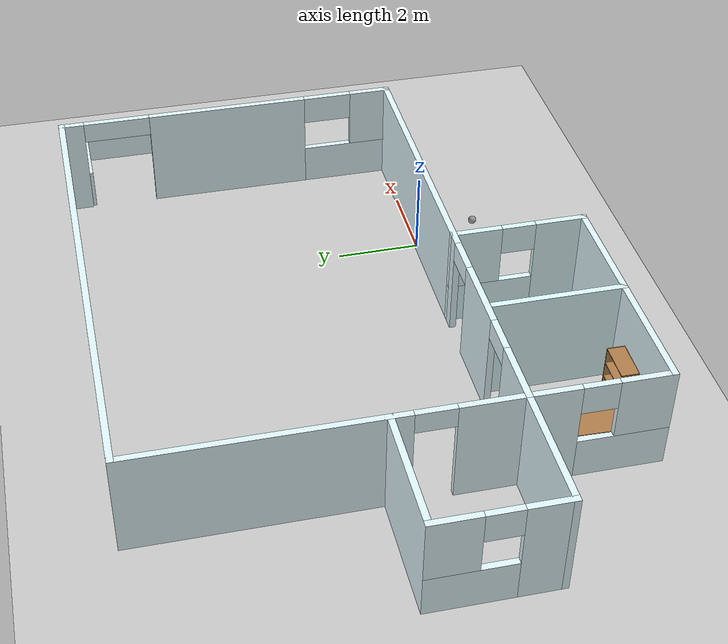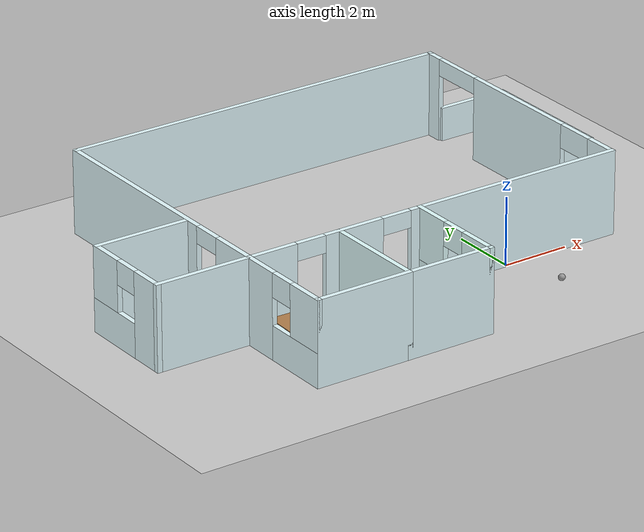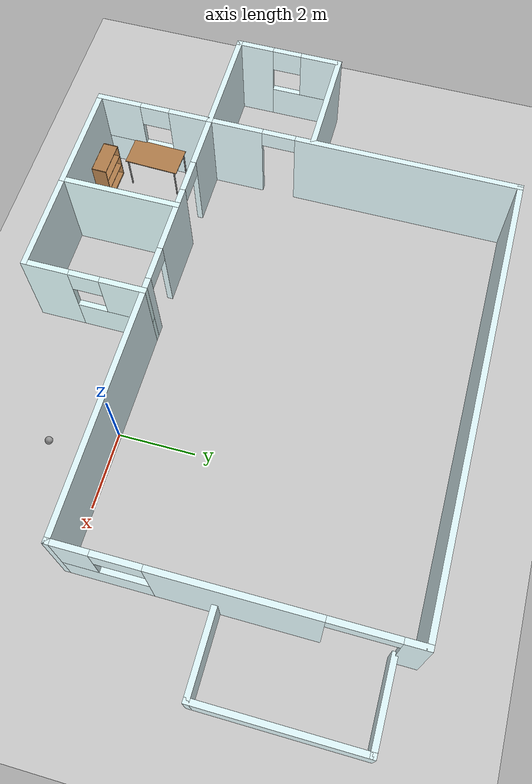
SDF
<sdf version="1.6">
 <world name="default">
  <light name="sun" type="directional">
   <pose>0 0 10 0 -0 0</pose>
   <diffuse>0.8 0.8 0.8 1</diffuse>
   <specular>0.2 0.2 0.2 1</specular>
   <attenuation>
    <range>1000</range>
    <constant>0.9</constant>
    <linear>0.01</linear>
    <quadratic>0.001</quadratic>
   </attenuation>
   <direction>-0.5 0.1 -0.9</direction>
  </light>
  <model name="ground_plane">
   <static>1</static>
   <link name="link">
    <collision name="collision">
     <geometry><plane><normal>0 0 1</normal><size>100 100</size></plane></geometry>
     <surface><friction><ode><mu>100</mu><mu2>50</mu2></ode></friction></surface>
    </collision>
    <visual name="visual">
     <cast_shadows>0</cast_shadows>
     <geometry><plane><normal>0 0 1</normal><size>100 100</size></plane></geometry>
     <material>
      <script><uri>file://media/materials/scripts/gazebo.material</uri><name>Gazebo/Grey</name></script>
     </material>
    </visual>
   </link>
  </model>
  <gravity>0 0 -9.8</gravity>
  <magnetic_field>6e-06 2.3e-05 -4.2e-05</magnetic_field>
  <atmosphere type="adiabatic"/>
  <physics name="default_physics" default="0" type="ode">
   <max_step_size>0.001</max_step_size>
   <real_time_factor>1</real_time_factor>
   <real_time_update_rate>1000</real_time_update_rate>
  </physics>
  <scene><ambient>0.4 0.4 0.4 1</ambient><background>0.7 0.7 0.7 1</background><shadows>1</shadows></scene>
  <spherical_coordinates>
   <surface_model>EARTH_WGS84</surface_model>
   <latitude_deg>0</latitude_deg>
   <longitude_deg>0</longitude_deg>
   <elevation>0</elevation>
   <heading_deg>0</heading_deg>
  </spherical_coordinates>
  <model name="building">
   <pose>-2.74196 2.61054 0 0 -0 0</pose>
   <link name="Wall_0">
    <collision name="Wall_0_Collision">
     <geometry><box><size>12 0.15 2.5</size></box></geometry>
     <pose>0 0 1.25 0 -0 0</pose>
    </collision>
    <visual name="Wall_0_Visual">
     <pose>0 0 1.25 0 -0 0</pose>
     <geometry><box><size>12 0.15 2.5</size></box></geometry>
     <material>
      <script><uri>file://media/materials/scripts/gazebo.material</uri><name>Gazebo/Grey</name></script>
      <ambient>0.894118 0.984314 1 1</ambient>
     </material>
     <meta><layer>0</layer></meta>
    </visual>
    <pose>0.344043 5.725 0 0 -0 0</pose>
   </link>
   <link name="Wall_1">
    <pose>6.26904 1.55 0 0 0 -1.5708</pose>
    <visual name="Wall_1_Visual_0">
     <pose>-3.93993 0 1.25 0 -0 0</pose>
     <geometry><box><size>0.620139 0.15 2.5</size></box></geometry>
     <material>
      <script><uri>file://media/materials/scripts/gazebo.material</uri><name>Gazebo/Grey</name></script>
      <ambient>0.894118 0.984314 1 1</ambient>
     </material>
     <meta><layer>0</layer></meta>
    </visual>
    <collision name="Wall_1_Collision_0">
     <geometry><box><size>0.620139 0.15 2.5</size></box></geometry>
     <pose>-3.93993 0 1.25 0 -0 0</pose>
    </collision>
    <visual name="Wall_1_Visual_1">
     <pose>0.010563 0 1.25 0 -0 0</pose>
     <geometry><box><size>3.99124 0.15 2.5</size></box></geometry>
     <material>
      <script><uri>file://media/materials/scripts/gazebo.material</uri><name>Gazebo/Grey</name></script>
      <ambient>0.894118 0.984314 1 1</ambient>
     </material>
     <meta><layer>0</layer></meta>
    </visual>
    <collision name="Wall_1_Collision_1">
     <geometry><box><size>3.99124 0.15 2.5</size></box></geometry>
     <pose>0.010563 0 1.25 0 -0 0</pose>
    </collision>
    <visual name="Wall_1_Visual_2">
     <pose>3.12809 0 0.5 0 -0 0</pose>
     <geometry><box><size>2.24382 0.15 1</size></box></geometry>
     <material>
      <script><uri>file://media/materials/scripts/gazebo.material</uri><name>Gazebo/Grey</name></script>
      <ambient>0.894118 0.984314 1 1</ambient>
     </material>
     <meta><layer>0</layer></meta>
    </visual>
    <collision name="Wall_1_Collision_2">
     <geometry><box><size>2.24382 0.15 1</size></box></geometry>
     <pose>3.12809 0 0.5 0 -0 0</pose>
    </collision>
    <visual name="Wall_1_Visual_3">
     <pose>3.72759 0 1.75 0 -0 0</pose>
     <geometry><box><size>1.04482 0.15 1.5</size></box></geometry>
     <material>
      <script><uri>file://media/materials/scripts/gazebo.material</uri><name>Gazebo/Grey</name></script>
      <ambient>0.894118 0.984314 1 1</ambient>
     </material>
     <meta><layer>0</layer></meta>
    </visual>
    <collision name="Wall_1_Collision_3">
     <geometry><box><size>1.04482 0.15 1.5</size></box></geometry>
     <pose>3.72759 0 1.75 0 -0 0</pose>
    </collision>
    <visual name="Wall_1_Visual_4">
     <pose>2.60568 0 2.15 0 -0 0</pose>
     <geometry><box><size>1.199 0.15 0.7</size></box></geometry>
     <material>
      <script><uri>file://media/materials/scripts/gazebo.material</uri><name>Gazebo/Grey</name></script>
      <ambient>0.894118 0.984314 1 1</ambient>
     </material>
     <meta><layer>0</layer></meta>
    </visual>
    <collision name="Wall_1_Collision_4">
     <geometry><box><size>1.199 0.15 0.7</size></box></geometry>
     <pose>2.60568 0 2.15 0 -0 0</pose>
    </collision>
    <visual name="Wall_1_Visual_5">
     <pose>-2.80746 0 2.25 0 -0 0</pose>
     <geometry><box><size>1.64481 0.15 0.5</size></box></geometry>
     <material>
      <script><uri>file://media/materials/scripts/gazebo.material</uri><name>Gazebo/Grey</name></script>
      <ambient>0.894118 0.984314 1 1</ambient>
     </material>
     <meta><layer>0</layer></meta>
    </visual>
    <collision name="Wall_1_Collision_5">
     <geometry><box><size>1.64481 0.15 0.5</size></box></geometry>
     <pose>-2.80746 0 2.25 0 -0 0</pose>
    </collision>
   </link>
   <link name="Wall_10">
    <collision name="Wall_10_Collision">
     <geometry><box><size>3.25 0.15 2.5</size></box></geometry>
     <pose>0 0 1.25 0 -0 0</pose>
    </collision>
    <visual name="Wall_10_Visual">
     <pose>0 0 1.25 0 -0 0</pose>
     <geometry><box><size>3.25 0.15 2.5</size></box></geometry>
     <material>
      <script><uri>file://media/materials/scripts/gazebo.material</uri><name>Gazebo/Grey</name></script>
      <ambient>0.886275 1 1 1</ambient>
     </material>
     <meta><layer>0</layer></meta>
    </visual>
    <pose>-2.73096 -4.175 0 0 -0 1.5708</pose>
   </link>
   <link name="Wall_12">
    <collision name="Wall_12_Collision">
     <geometry><box><size>2.75 0.15 2.5</size></box></geometry>
     <pose>0 0 1.25 0 -0 0</pose>
    </collision>
    <visual name="Wall_12_Visual">
     <pose>0 0 1.25 0 -0 0</pose>
     <geometry><box><size>2.75 0.15 2.5</size></box></geometry>
     <material>
      <script><uri>file://media/materials/scripts/gazebo.material</uri><name>Gazebo/Grey</name></script>
      <ambient>0.894118 0.984314 1 1</ambient>
     </material>
     <meta><layer>0</layer></meta>
    </visual>
    <pose>-1.43096 -5.725 0 0 -0 0</pose>
   </link>
   <link name="Wall_16">
    <pose>-0.130957 -4.175 0 0 -0 1.5708</pose>
    <visual name="Wall_16_Visual_0">
     <pose>-1.00895 0 1.25 0 -0 0</pose>
     <geometry><box><size>1.23209 0.15 2.5</size></box></geometry>
     <material>
      <script><uri>file://media/materials/scripts/gazebo.material</uri><name>Gazebo/Grey</name></script>
      <ambient>0.886275 1 1 1</ambient>
     </material>
     <meta><layer>0</layer></meta>
    </visual>
    <collision name="Wall_16_Collision_0">
     <geometry><box><size>1.23209 0.15 2.5</size></box></geometry>
     <pose>-1.00895 0 1.25 0 -0 0</pose>
    </collision>
    <visual name="Wall_16_Visual_1">
     <pose>0.616047 0 0.5 0 -0 0</pose>
     <geometry><box><size>2.01791 0.15 1</size></box></geometry>
     <material>
      <script><uri>file://media/materials/scripts/gazebo.material</uri><name>Gazebo/Grey</name></script>
      <ambient>0.886275 1 1 1</ambient>
     </material>
     <meta><layer>0</layer></meta>
    </visual>
    <collision name="Wall_16_Collision_1">
     <geometry><box><size>2.01791 0.15 1</size></box></geometry>
     <pose>0.616047 0 0.5 0 -0 0</pose>
    </collision>
    <visual name="Wall_16_Visual_2">
     <pose>1.01605 0 1.75 0 -0 0</pose>
     <geometry><box><size>1.21791 0.15 1.5</size></box></geometry>
     <material>
      <script><uri>file://media/materials/scripts/gazebo.material</uri><name>Gazebo/Grey</name></script>
      <ambient>0.886275 1 1 1</ambient>
     </material>
     <meta><layer>0</layer></meta>
    </visual>
    <collision name="Wall_16_Collision_2">
     <geometry><box><size>1.21791 0.15 1.5</size></box></geometry>
     <pose>1.01605 0 1.75 0 -0 0</pose>
    </collision>
    <visual name="Wall_16_Visual_3">
     <pose>0.007094 0 2.15 0 -0 0</pose>
     <geometry><box><size>0.8 0.15 0.7</size></box></geometry>
     <material>
      <script><uri>file://media/materials/scripts/gazebo.material</uri><name>Gazebo/Grey</name></script>
      <ambient>0.886275 1 1 1</ambient>
     </material>
     <meta><layer>0</layer></meta>
    </visual>
    <collision name="Wall_16_Collision_3">
     <geometry><box><size>0.8 0.15 0.7</size></box></geometry>
     <pose>0.007094 0 2.15 0 -0 0</pose>
    </collision>
   </link>
   <link name="Wall_18">
    <collision name="Wall_18_Collision">
     <geometry><box><size>3 0.15 2.5</size></box></geometry>
     <pose>0 0 1.25 0 -0 0</pose>
    </collision>
    <visual name="Wall_18_Visual">
     <pose>0 0 1.25 0 -0 0</pose>
     <geometry><box><size>3 0.15 2.5</size></box></geometry>
     <material>
      <script><uri>file://media/materials/scripts/gazebo.material</uri><name>Gazebo/Grey</name></script>
      <ambient>0.894118 0.984314 1 1</ambient>
     </material>
     <meta><layer>0</layer></meta>
    </visual>
    <pose>-7.00596 -2.625 0 0 -0 3.14159</pose>
   </link>
   <link name="Wall_19">
    <pose>-8.43096 -1.2 0 0 -0 1.5708</pose>
    <visual name="Wall_19_Visual_0">
     <pose>-0.970942 0 1.25 0 -0 0</pose>
     <geometry><box><size>1.05812 0.15 2.5</size></box></geometry>
     <material>
      <script><uri>file://media/materials/scripts/gazebo.material</uri><name>Gazebo/Grey</name></script>
      <ambient>0.894118 0.984314 1 1</ambient>
     </material>
     <meta><layer>0</layer></meta>
    </visual>
    <collision name="Wall_19_Collision_0">
     <geometry><box><size>1.05812 0.15 2.5</size></box></geometry>
     <pose>-0.970942 0 1.25 0 -0 0</pose>
    </collision>
    <visual name="Wall_19_Visual_1">
     <pose>0.529058 0 0.5 0 -0 0</pose>
     <geometry><box><size>1.94188 0.15 1</size></box></geometry>
     <material>
      <script><uri>file://media/materials/scripts/gazebo.material</uri><name>Gazebo/Grey</name></script>
      <ambient>0.894118 0.984314 1 1</ambient>
     </material>
     <meta><layer>0</layer></meta>
    </visual>
    <collision name="Wall_19_Collision_1">
     <geometry><box><size>1.94188 0.15 1</size></box></geometry>
     <pose>0.529058 0 0.5 0 -0 0</pose>
    </collision>
    <visual name="Wall_19_Visual_2">
     <pose>0.929058 0 1.75 0 -0 0</pose>
     <geometry><box><size>1.14188 0.15 1.5</size></box></geometry>
     <material>
      <script><uri>file://media/materials/scripts/gazebo.material</uri><name>Gazebo/Grey</name></script>
      <ambient>0.894118 0.984314 1 1</ambient>
     </material>
     <meta><layer>0</layer></meta>
    </visual>
    <collision name="Wall_19_Collision_2">
     <geometry><box><size>1.14188 0.15 1.5</size></box></geometry>
     <pose>0.929058 0 1.75 0 -0 0</pose>
    </collision>
    <visual name="Wall_19_Visual_3">
     <pose>-0.041884 0 2.15 0 -0 0</pose>
     <geometry><box><size>0.8 0.15 0.7</size></box></geometry>
     <material>
      <script><uri>file://media/materials/scripts/gazebo.material</uri><name>Gazebo/Grey</name></script>
      <ambient>0.894118 0.984314 1 1</ambient>
     </material>
     <meta><layer>0</layer></meta>
    </visual>
    <collision name="Wall_19_Collision_3">
     <geometry><box><size>0.8 0.15 0.7</size></box></geometry>
     <pose>-0.041884 0 2.15 0 -0 0</pose>
    </collision>
   </link>
   <link name="Wall_2">
    <pose>0.344043 -2.625 0 0 -0 3.14159</pose>
    <visual name="Wall_2_Visual_0">
     <pose>-2.58777 0 1.25 0 -0 0</pose>
     <geometry><box><size>6.82447 0.15 2.5</size></box></geometry>
     <material>
      <script><uri>file://media/materials/scripts/gazebo.material</uri><name>Gazebo/Grey</name></script>
      <ambient>0.894118 0.984314 1 1</ambient>
     </material>
     <meta><layer>0</layer></meta>
    </visual>
    <collision name="Wall_2_Collision_0">
     <geometry><box><size>6.82447 0.15 2.5</size></box></geometry>
     <pose>-2.58777 0 1.25 0 -0 0</pose>
    </collision>
    <visual name="Wall_2_Visual_1">
     <pose>2.64438 0 1.25 0 -0 0</pose>
     <geometry><box><size>1.83982 0.15 2.5</size></box></geometry>
     <material>
      <script><uri>file://media/materials/scripts/gazebo.material</uri><name>Gazebo/Grey</name></script>
      <ambient>0.894118 0.984314 1 1</ambient>
     </material>
     <meta><layer>0</layer></meta>
    </visual>
    <collision name="Wall_2_Collision_1">
     <geometry><box><size>1.83982 0.15 2.5</size></box></geometry>
     <pose>2.64438 0 1.25 0 -0 0</pose>
    </collision>
    <visual name="Wall_2_Visual_2">
     <pose>5.23215 0 1.25 0 -0 0</pose>
     <geometry><box><size>1.53571 0.15 2.5</size></box></geometry>
     <material>
      <script><uri>file://media/materials/scripts/gazebo.material</uri><name>Gazebo/Grey</name></script>
      <ambient>0.894118 0.984314 1 1</ambient>
     </material>
     <meta><layer>0</layer></meta>
    </visual>
    <collision name="Wall_2_Collision_2">
     <geometry><box><size>1.53571 0.15 2.5</size></box></geometry>
     <pose>5.23215 0 1.25 0 -0 0</pose>
    </collision>
    <visual name="Wall_2_Visual_3">
     <pose>1.27447 0 2.25 0 -0 0</pose>
     <geometry><box><size>0.9 0.15 0.5</size></box></geometry>
     <material>
      <script><uri>file://media/materials/scripts/gazebo.material</uri><name>Gazebo/Grey</name></script>
      <ambient>0.894118 0.984314 1 1</ambient>
     </material>
     <meta><layer>0</layer></meta>
    </visual>
    <collision name="Wall_2_Collision_3">
     <geometry><box><size>0.9 0.15 0.5</size></box></geometry>
     <pose>1.27447 0 2.25 0 -0 0</pose>
    </collision>
    <visual name="Wall_2_Visual_4">
     <pose>4.01429 0 2.25 0 -0 0</pose>
     <geometry><box><size>0.9 0.15 0.5</size></box></geometry>
     <material>
      <script><uri>file://media/materials/scripts/gazebo.material</uri><name>Gazebo/Grey</name></script>
      <ambient>0.894118 0.984314 1 1</ambient>
     </material>
     <meta><layer>0</layer></meta>
    </visual>
    <collision name="Wall_2_Collision_4">
     <geometry><box><size>0.9 0.15 0.5</size></box></geometry>
     <pose>4.01429 0 2.25 0 -0 0</pose>
    </collision>
   </link>
   <link name="Wall_20">
    <collision name="Wall_20_Collision">
     <geometry><box><size>3 0.15 2.5</size></box></geometry>
     <pose>0 0 1.25 0 -0 0</pose>
    </collision>
    <visual name="Wall_20_Visual">
     <pose>0 0 1.25 0 -0 0</pose>
     <geometry><box><size>3 0.15 2.5</size></box></geometry>
     <material>
      <script><uri>file://media/materials/scripts/gazebo.material</uri><name>Gazebo/Grey</name></script>
      <ambient>0.894118 0.984314 1 1</ambient>
     </material>
     <meta><layer>0</layer></meta>
    </visual>
    <pose>-7.00596 0.225 0 0 -0 0</pose>
   </link>
   <link name="Wall_22">
    <pose>7.38096 5.16846 0 0 -0 0</pose>
    <visual name="Wall_22_Visual_0">
     <pose>0 0 0.5 0 -0 0</pose>
     <geometry><box><size>2.25 0.15 1</size></box></geometry>
     <material>
      <script><uri>file://media/materials/scripts/gazebo.material</uri><name>Gazebo/Grey</name></script>
      <ambient>0.894118 0.984314 1 1</ambient>
     </material>
     <meta><layer>0</layer></meta>
    </visual>
    <collision name="Wall_22_Collision_0">
     <geometry><box><size>2.25 0.15 1</size></box></geometry>
     <pose>0 0 0.5 0 -0 0</pose>
    </collision>
   </link>
   <link name="Wall_23">
    <pose>8.43096 3.11846 0 0 0 -1.5708</pose>
    <visual name="Wall_23_Visual_0">
     <pose>0 0 0.5 0 -0 0</pose>
     <geometry><box><size>4.25 0.15 1</size></box></geometry>
     <material>
      <script><uri>file://media/materials/scripts/gazebo.material</uri><name>Gazebo/Grey</name></script>
      <ambient>0.894118 0.984314 1 1</ambient>
     </material>
     <meta><layer>0</layer></meta>
    </visual>
    <collision name="Wall_23_Collision_0">
     <geometry><box><size>4.25 0.15 1</size></box></geometry>
     <pose>0 0 0.5 0 -0 0</pose>
    </collision>
   </link>
   <link name="Wall_24">
    <pose>7.38096 1.06846 0 0 -0 3.14159</pose>
    <visual name="Wall_24_Visual_0">
     <pose>0 0 0.5 0 -0 0</pose>
     <geometry><box><size>2.25 0.15 1</size></box></geometry>
     <material>
      <script><uri>file://media/materials/scripts/gazebo.material</uri><name>Gazebo/Grey</name></script>
      <ambient>0.894118 0.984314 1 1</ambient>
     </material>
     <meta><layer>0</layer></meta>
    </visual>
    <collision name="Wall_24_Collision_0">
     <geometry><box><size>2.25 0.15 1</size></box></geometry>
     <pose>0 0 0.5 0 -0 0</pose>
    </collision>
   </link>
   <link name="Wall_3">
    <pose>-5.58096 1.55 0 0 -0 1.5708</pose>
    <visual name="Wall_3_Visual_0">
     <pose>-3.47994 0 1.25 0 -0 0</pose>
     <geometry><box><size>1.54012 0.15 2.5</size></box></geometry>
     <material>
      <script><uri>file://media/materials/scripts/gazebo.material</uri><name>Gazebo/Grey</name></script>
      <ambient>0.894118 0.984314 1 1</ambient>
     </material>
     <meta><layer>0</layer></meta>
    </visual>
    <collision name="Wall_3_Collision_0">
     <geometry><box><size>1.54012 0.15 2.5</size></box></geometry>
     <pose>-3.47994 0 1.25 0 -0 0</pose>
    </collision>
    <visual name="Wall_3_Visual_1">
     <pose>1.22006 0 1.25 0 -0 0</pose>
     <geometry><box><size>6.05988 0.15 2.5</size></box></geometry>
     <material>
      <script><uri>file://media/materials/scripts/gazebo.material</uri><name>Gazebo/Grey</name></script>
      <ambient>0.894118 0.984314 1 1</ambient>
     </material>
     <meta><layer>0</layer></meta>
    </visual>
    <collision name="Wall_3_Collision_1">
     <geometry><box><size>6.05988 0.15 2.5</size></box></geometry>
     <pose>1.22006 0 1.25 0 -0 0</pose>
    </collision>
    <visual name="Wall_3_Visual_2">
     <pose>-2.25988 0 2.25 0 -0 0</pose>
     <geometry><box><size>0.9 0.15 0.5</size></box></geometry>
     <material>
      <script><uri>file://media/materials/scripts/gazebo.material</uri><name>Gazebo/Grey</name></script>
      <ambient>0.894118 0.984314 1 1</ambient>
     </material>
     <meta><layer>0</layer></meta>
    </visual>
    <collision name="Wall_3_Collision_2">
     <geometry><box><size>0.9 0.15 0.5</size></box></geometry>
     <pose>-2.25988 0 2.25 0 -0 0</pose>
    </collision>
   </link>
   <link name="Wall_8">
    <pose>-5.58096 -4.175 0 0 0 -1.5708</pose>
    <visual name="Wall_8_Visual_0">
     <pose>-1.01605 0 1.25 0 -0 0</pose>
     <geometry><box><size>1.21791 0.15 2.5</size></box></geometry>
     <material>
      <script><uri>file://media/materials/scripts/gazebo.material</uri><name>Gazebo/Grey</name></script>
      <ambient>0.894118 0.984314 1 1</ambient>
     </material>
     <meta><layer>0</layer></meta>
    </visual>
    <collision name="Wall_8_Collision_0">
     <geometry><box><size>1.21791 0.15 2.5</size></box></geometry>
     <pose>-1.01605 0 1.25 0 -0 0</pose>
    </collision>
    <visual name="Wall_8_Visual_1">
     <pose>0.608953 0 0.5 0 -0 0</pose>
     <geometry><box><size>2.03209 0.15 1</size></box></geometry>
     <material>
      <script><uri>file://media/materials/scripts/gazebo.material</uri><name>Gazebo/Grey</name></script>
      <ambient>0.894118 0.984314 1 1</ambient>
     </material>
     <meta><layer>0</layer></meta>
    </visual>
    <collision name="Wall_8_Collision_1">
     <geometry><box><size>2.03209 0.15 1</size></box></geometry>
     <pose>0.608953 0 0.5 0 -0 0</pose>
    </collision>
    <visual name="Wall_8_Visual_2">
     <pose>1.00895 0 1.75 0 -0 0</pose>
     <geometry><box><size>1.23209 0.15 1.5</size></box></geometry>
     <material>
      <script><uri>file://media/materials/scripts/gazebo.material</uri><name>Gazebo/Grey</name></script>
      <ambient>0.894118 0.984314 1 1</ambient>
     </material>
     <meta><layer>0</layer></meta>
    </visual>
    <collision name="Wall_8_Collision_2">
     <geometry><box><size>1.23209 0.15 1.5</size></box></geometry>
     <pose>1.00895 0 1.75 0 -0 0</pose>
    </collision>
    <visual name="Wall_8_Visual_3">
     <pose>-0.007094 0 2.15 0 -0 0</pose>
     <geometry><box><size>0.8 0.15 0.7</size></box></geometry>
     <material>
      <script><uri>file://media/materials/scripts/gazebo.material</uri><name>Gazebo/Grey</name></script>
      <ambient>0.894118 0.984314 1 1</ambient>
     </material>
     <meta><layer>0</layer></meta>
    </visual>
    <collision name="Wall_8_Collision_3">
     <geometry><box><size>0.8 0.15 0.7</size></box></geometry>
     <pose>-0.007094 0 2.15 0 -0 0</pose>
    </collision>
   </link>
   <link name="Wall_9">
    <collision name="Wall_9_Collision">
     <geometry><box><size>3 0.15 2.5</size></box></geometry>
     <pose>0 0 1.25 0 -0 0</pose>
    </collision>
    <visual name="Wall_9_Visual">
     <pose>0 0 1.25 0 -0 0</pose>
     <geometry><box><size>3 0.15 2.5</size></box></geometry>
     <material>
      <script><uri>file://media/materials/scripts/gazebo.material</uri><name>Gazebo/Grey</name></script>
      <ambient>0.894118 0.984314 1 1</ambient>
     </material>
     <meta><layer>0</layer></meta>
    </visual>
    <pose>-4.15596 -5.725 0 0 -0 0</pose>
   </link>
   <static>1</static>
  </model>
  <model name="bookshelf">
   <static>1</static>
   <link name="link">
    <inertial><mass>1</mass></inertial>
    <collision name="back">
     <pose>0 0.005 0.6 0 -0 0</pose>
     <geometry><box><size>0.9 0.01 1.2</size></box></geometry>
    </collision>
    <visual name="visual1">
     <pose>0 0.005 0.6 0 -0 0</pose>
     <geometry><box><size>0.9 0.01 1.2</size></box></geometry>
     <material>
      <script><uri>file://media/materials/scripts/gazebo.material</uri><name>Gazebo/Wood</name></script>
     </material>
    </visual>
    <collision name="left_side">
     <pose>0.45 -0.195 0.6 0 -0 0</pose>
     <geometry><box><size>0.02 0.4 1.2</size></box></geometry>
    </collision>
    <visual name="visual2">
     <pose>0.45 -0.195 0.6 0 -0 0</pose>
     <geometry><box><size>0.02 0.4 1.2</size></box></geometry>
     <material>
      <script><uri>file://media/materials/scripts/gazebo.material</uri><name>Gazebo/Wood</name></script>
     </material>
    </visual>
    <collision name="right_side">
     <pose>-0.45 -0.195 0.6 0 -0 0</pose>
     <geometry><box><size>0.02 0.4 1.2</size></box></geometry>
    </collision>
    <visual name="visual3">
     <pose>-0.45 -0.195 0.6 0 -0 0</pose>
     <geometry><box><size>0.02 0.4 1.2</size></box></geometry>
     <material>
      <script><uri>file://media/materials/scripts/gazebo.material</uri><name>Gazebo/Wood</name></script>
     </material>
    </visual>
    <collision name="bottom">
     <pose>0 -0.195 0.03 0 -0 0</pose>
     <geometry><box><size>0.88 0.4 0.06</size></box></geometry>
    </collision>
    <visual name="visual4">
     <pose>0 -0.195 0.03 0 -0 0</pose>
     <geometry><box><size>0.88 0.4 0.06</size></box></geometry>
     <material>
      <script><uri>file://media/materials/scripts/gazebo.material</uri><name>Gazebo/Wood</name></script>
     </material>
    </visual>
    <collision name="top">
     <pose>0 -0.195 1.19 0 -0 0</pose>
     <geometry><box><size>0.88 0.4 0.02</size></box></geometry>
    </collision>
    <visual name="visual5">
     <pose>0 -0.195 1.19 0 -0 0</pose>
     <geometry><box><size>0.88 0.4 0.02</size></box></geometry>
     <material>
      <script><uri>file://media/materials/scripts/gazebo.material</uri><name>Gazebo/Wood</name></script>
     </material>
    </visual>
    <collision name="low_shelf">
     <pose>0 -0.195 0.43 0 -0 0</pose>
     <geometry><box><size>0.88 0.4 0.02</size></box></geometry>
    </collision>
    <visual name="visual6">
     <pose>0 -0.195 0.43 0 -0 0</pose>
     <geometry><box><size>0.88 0.4 0.02</size></box></geometry>
     <material>
      <script><uri>file://media/materials/scripts/gazebo.material</uri><name>Gazebo/Wood</name></script>
     </material>
    </visual>
    <collision name="high_shelf">
     <pose>0 -0.195 0.8 0 -0 0</pose>
     <geometry><box><size>0.88 0.4 0.02</size></box></geometry>
    </collision>
    <visual name="visual7">
     <pose>0 -0.195 0.8 0 -0 0</pose>
     <geometry><box><size>0.88 0.4 0.02</size></box></geometry>
     <material>
      <script><uri>file://media/materials/scripts/gazebo.material</uri><name>Gazebo/Wood</name></script>
     </material>
    </visual>
   </link>
   <pose>-6.95571 -2.82741 0.494556 0 -0 3.12529</pose>
  </model>
  <model name="table">
   <static>1</static>
   <link name="link">
    <collision name="surface">
     <pose>0 0 1 0 -0 0</pose>
     <geometry><box><size>1.5 0.8 0.03</size></box></geometry>
     <surface><friction><ode><mu>0.6</mu><mu2>0.6</mu2></ode></friction></surface>
    </collision>
    <visual name="visual1">
     <pose>0 0 1 0 -0 0</pose>
     <geometry><box><size>1.5 0.8 0.03</size></box></geometry>
     <material>
      <script><uri>file://media/materials/scripts/gazebo.material</uri><name>Gazebo/Wood</name></script>
     </material>
    </visual>
    <collision name="front_left_leg">
     <pose>0.68 0.38 0.5 0 -0 0</pose>
     <geometry><cylinder><radius>0.02</radius><length>1</length></cylinder></geometry>
    </collision>
    <visual name="front_left_leg">
     <pose>0.68 0.38 0.5 0 -0 0</pose>
     <geometry><cylinder><radius>0.02</radius><length>1</length></cylinder></geometry>
     <material>
      <script><uri>file://media/materials/scripts/gazebo.material</uri><name>Gazebo/Grey</name></script>
     </material>
    </visual>
    <collision name="front_right_leg">
     <pose>0.68 -0.38 0.5 0 -0 0</pose>
     <geometry><cylinder><radius>0.02</radius><length>1</length></cylinder></geometry>
    </collision>
    <visual name="front_right_leg">
     <pose>0.68 -0.38 0.5 0 -0 0</pose>
     <geometry><cylinder><radius>0.02</radius><length>1</length></cylinder></geometry>
     <material>
      <script><uri>file://media/materials/scripts/gazebo.material</uri><name>Gazebo/Grey</name></script>
     </material>
    </visual>
    <collision name="back_right_leg">
     <pose>-0.68 -0.38 0.5 0 -0 0</pose>
     <geometry><cylinder><radius>0.02</radius><length>1</length></cylinder></geometry>
    </collision>
    <visual name="back_right_leg">
     <pose>-0.68 -0.38 0.5 0 -0 0</pose>
     <geometry><cylinder><radius>0.02</radius><length>1</length></cylinder></geometry>
     <material>
      <script><uri>file://media/materials/scripts/gazebo.material</uri><name>Gazebo/Grey</name></script>
     </material>
    </visual>
    <collision name="back_left_leg">
     <pose>-0.68 0.38 0.5 0 -0 0</pose>
     <geometry><cylinder><radius>0.02</radius><length>1</length></cylinder></geometry>
    </collision>
    <visual name="back_left_leg">
     <pose>-0.68 0.38 0.5 0 -0 0</pose>
     <geometry><cylinder><radius>0.02</radius><length>1</length></cylinder></geometry>
     <material>
      <script><uri>file://media/materials/scripts/gazebo.material</uri><name>Gazebo/Grey</name></script>
     </material>
    </visual>
   </link>
   <pose>-7.85604 -1.56117 0 0 0 -1.60306</pose>
  </model>
  <model name="my_ball">
   <link name="link_0">
    <inertial>
     <mass>1</mass>
     <inertia><ixx>0.1</ixx><ixy>0</ixy><ixz>0</ixz><iyy>0.1</iyy><iyz>0</iyz><izz>0.1</izz></inertia>
    </inertial>
    <visual name="visual">
     <geometry><sphere><radius>0.1</radius></sphere></geometry>
     <material>
      <lighting>1</lighting>
      <script><uri>file://media/materials/scripts/gazebo.material</uri><name>Gazebo/Grey</name></script>
      <shader type="pixel"><normal_map>__default__</normal_map></shader>
      <ambient>1 1 1 1</ambient>
      <diffuse>1 1 1 1</diffuse>
      <specular>1 1 1 1</specular>
      <emissive>1 1 1 1</emissive>
     </material>
    </visual>
    <collision name="collision">
     <geometry><sphere><radius>0.1</radius></sphere></geometry>
     <surface>
      <friction>
       <ode><mu>1</mu><mu2>1</mu2><fdir1>0 0 0</fdir1><slip1>0</slip1><slip2>0</slip2></ode>
       <torsional>
        <coefficient>1</coefficient>
        <patch_radius>0</patch_radius>
        <surface_radius>0</surface_radius>
        <use_patch_radius>1</use_patch_radius>
        <ode><slip>0</slip></ode>
       </torsional>
      </friction>
      <bounce><restitution_coefficient>0</restitution_coefficient><threshold>1e+06</threshold></bounce>
      <contact>
       <collide_without_contact>0</collide_without_contact>
       <collide_without_contact_bitmask>1</collide_without_contact_bitmask>
       <collide_bitmask>1</collide_bitmask>
       <ode>
        <soft_cfm>0</soft_cfm>
        <soft_erp>0.2</soft_erp>
        <kp>1e+13</kp>
        <kd>1</kd>
        <max_vel>0.01</max_vel>
        <min_depth>0</min_depth>
       </ode>
       <bullet>
        <split_impulse>1</split_impulse>
        <split_impulse_penetration_threshold>-0.01</split_impulse_penetration_threshold>
        <soft_cfm>0</soft_cfm>
        <soft_erp>0.2</soft_erp>
        <kp>1e+13</kp>
        <kd>1</kd>
       </bullet>
      </contact>
     </surface>
    </collision>
   </link>
   <static>0</static>
   <pose>0.643396 -1.63735 0.1 0 -0 0</pose>
  </model>
 </world>
</sdf>
